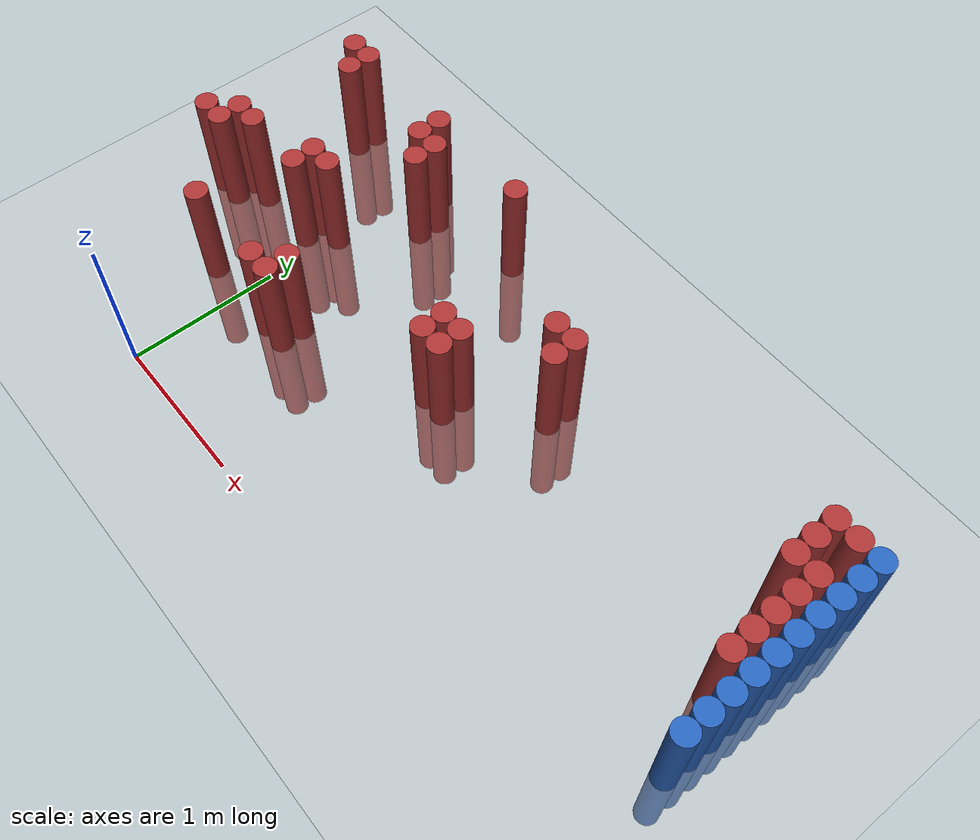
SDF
<sdf version="1.6">
 <world name="default">
  <model name="ground_plane">
   <static>1</static>
   <link name="link">
    <collision name="collision">
     <geometry><plane><normal>0 0 1</normal><size>100 100</size></plane></geometry>
     <surface><friction><ode><mu>100</mu><mu2>50</mu2></ode></friction></surface>
    </collision>
    <visual name="visual">
     <cast_shadows>0</cast_shadows>
     <geometry><plane><normal>0 0 1</normal><size>100 100</size></plane></geometry>
     <material>
      <script><uri>file://media/materials/scripts/gazebo.material</uri><name>Gazebo/Grey</name></script>
     </material>
    </visual>
   </link>
  </model>
  <model name="unit_cylinder_126">
   <static>1</static>
   <pose>3.925000 0.925000 0.000000 0.000000 0.000000 0.000000</pose>
   <link name="link">
    <inertial>
     <mass>1</mass>
     <inertia><ixx>0.145833</ixx><ixy>0</ixy><ixz>0</ixz><iyy>0.145833</iyy><iyz>0</iyz><izz>0.125</izz></inertia>
    </inertial>
    <collision name="collision">
     <geometry><cylinder><radius>0.075000</radius><length>1.5</length></cylinder></geometry>
    </collision>
    <visual name="visual">
     <geometry><cylinder><radius>0.075000</radius><length>1.5</length></cylinder></geometry>
     <material>
      <ambient>0.152000 0.379000 0.720000 1</ambient>
      <diffuse>0.152000 0.379000 0.720000 1</diffuse>
     </material>
     <material>
      <script><name>Gazebo/Grey</name><uri>file://media/materials/scripts/gazebo.material</uri></script>
     </material>
    </visual>
   </link>
  </model>
  <model name="unit_cylinder_128">
   <static>1</static>
   <pose>3.925000 1.075000 0.000000 0.000000 0.000000 0.000000</pose>
   <link name="link">
    <inertial>
     <mass>1</mass>
     <inertia><ixx>0.145833</ixx><ixy>0</ixy><ixz>0</ixz><iyy>0.145833</iyy><iyz>0</iyz><izz>0.125</izz></inertia>
    </inertial>
    <collision name="collision">
     <geometry><cylinder><radius>0.075000</radius><length>1.5</length></cylinder></geometry>
    </collision>
    <visual name="visual">
     <geometry><cylinder><radius>0.075000</radius><length>1.5</length></cylinder></geometry>
     <material>
      <ambient>0.152000 0.379000 0.720000 1</ambient>
      <diffuse>0.152000 0.379000 0.720000 1</diffuse>
     </material>
     <material>
      <script><name>Gazebo/Grey</name><uri>file://media/materials/scripts/gazebo.material</uri></script>
     </material>
    </visual>
   </link>
  </model>
  <model name="unit_cylinder_130">
   <static>1</static>
   <pose>3.925000 1.225000 0.000000 0.000000 0.000000 0.000000</pose>
   <link name="link">
    <inertial>
     <mass>1</mass>
     <inertia><ixx>0.145833</ixx><ixy>0</ixy><ixz>0</ixz><iyy>0.145833</iyy><iyz>0</iyz><izz>0.125</izz></inertia>
    </inertial>
    <collision name="collision">
     <geometry><cylinder><radius>0.075000</radius><length>1.5</length></cylinder></geometry>
    </collision>
    <visual name="visual">
     <geometry><cylinder><radius>0.075000</radius><length>1.5</length></cylinder></geometry>
     <material>
      <ambient>0.152000 0.379000 0.720000 1</ambient>
      <diffuse>0.152000 0.379000 0.720000 1</diffuse>
     </material>
     <material>
      <script><name>Gazebo/Grey</name><uri>file://media/materials/scripts/gazebo.material</uri></script>
     </material>
    </visual>
   </link>
  </model>
  <model name="unit_cylinder_132">
   <static>1</static>
   <pose>3.925000 1.375000 0.000000 0.000000 0.000000 0.000000</pose>
   <link name="link">
    <inertial>
     <mass>1</mass>
     <inertia><ixx>0.145833</ixx><ixy>0</ixy><ixz>0</ixz><iyy>0.145833</iyy><iyz>0</iyz><izz>0.125</izz></inertia>
    </inertial>
    <collision name="collision">
     <geometry><cylinder><radius>0.075000</radius><length>1.5</length></cylinder></geometry>
    </collision>
    <visual name="visual">
     <geometry><cylinder><radius>0.075000</radius><length>1.5</length></cylinder></geometry>
     <material>
      <ambient>0.152000 0.379000 0.720000 1</ambient>
      <diffuse>0.152000 0.379000 0.720000 1</diffuse>
     </material>
     <material>
      <script><name>Gazebo/Grey</name><uri>file://media/materials/scripts/gazebo.material</uri></script>
     </material>
    </visual>
   </link>
  </model>
  <model name="unit_cylinder_134">
   <static>1</static>
   <pose>3.925000 1.525000 0.000000 0.000000 0.000000 0.000000</pose>
   <link name="link">
    <inertial>
     <mass>1</mass>
     <inertia><ixx>0.145833</ixx><ixy>0</ixy><ixz>0</ixz><iyy>0.145833</iyy><iyz>0</iyz><izz>0.125</izz></inertia>
    </inertial>
    <collision name="collision">
     <geometry><cylinder><radius>0.075000</radius><length>1.5</length></cylinder></geometry>
    </collision>
    <visual name="visual">
     <geometry><cylinder><radius>0.075000</radius><length>1.5</length></cylinder></geometry>
     <material>
      <ambient>0.152000 0.379000 0.720000 1</ambient>
      <diffuse>0.152000 0.379000 0.720000 1</diffuse>
     </material>
     <material>
      <script><name>Gazebo/Grey</name><uri>file://media/materials/scripts/gazebo.material</uri></script>
     </material>
    </visual>
   </link>
  </model>
  <model name="unit_cylinder_136">
   <static>1</static>
   <pose>3.925000 1.675000 0.000000 0.000000 0.000000 0.000000</pose>
   <link name="link">
    <inertial>
     <mass>1</mass>
     <inertia><ixx>0.145833</ixx><ixy>0</ixy><ixz>0</ixz><iyy>0.145833</iyy><iyz>0</iyz><izz>0.125</izz></inertia>
    </inertial>
    <collision name="collision">
     <geometry><cylinder><radius>0.075000</radius><length>1.5</length></cylinder></geometry>
    </collision>
    <visual name="visual">
     <geometry><cylinder><radius>0.075000</radius><length>1.5</length></cylinder></geometry>
     <material>
      <ambient>0.152000 0.379000 0.720000 1</ambient>
      <diffuse>0.152000 0.379000 0.720000 1</diffuse>
     </material>
     <material>
      <script><name>Gazebo/Grey</name><uri>file://media/materials/scripts/gazebo.material</uri></script>
     </material>
    </visual>
   </link>
  </model>
  <model name="unit_cylinder_138">
   <static>1</static>
   <pose>3.925000 1.825000 0.000000 0.000000 0.000000 0.000000</pose>
   <link name="link">
    <inertial>
     <mass>1</mass>
     <inertia><ixx>0.145833</ixx><ixy>0</ixy><ixz>0</ixz><iyy>0.145833</iyy><iyz>0</iyz><izz>0.125</izz></inertia>
    </inertial>
    <collision name="collision">
     <geometry><cylinder><radius>0.075000</radius><length>1.5</length></cylinder></geometry>
    </collision>
    <visual name="visual">
     <geometry><cylinder><radius>0.075000</radius><length>1.5</length></cylinder></geometry>
     <material>
      <ambient>0.152000 0.379000 0.720000 1</ambient>
      <diffuse>0.152000 0.379000 0.720000 1</diffuse>
     </material>
     <material>
      <script><name>Gazebo/Grey</name><uri>file://media/materials/scripts/gazebo.material</uri></script>
     </material>
    </visual>
   </link>
  </model>
  <model name="unit_cylinder_140">
   <static>1</static>
   <pose>3.925000 1.975000 0.000000 0.000000 0.000000 0.000000</pose>
   <link name="link">
    <inertial>
     <mass>1</mass>
     <inertia><ixx>0.145833</ixx><ixy>0</ixy><ixz>0</ixz><iyy>0.145833</iyy><iyz>0</iyz><izz>0.125</izz></inertia>
    </inertial>
    <collision name="collision">
     <geometry><cylinder><radius>0.075000</radius><length>1.5</length></cylinder></geometry>
    </collision>
    <visual name="visual">
     <geometry><cylinder><radius>0.075000</radius><length>1.5</length></cylinder></geometry>
     <material>
      <ambient>0.152000 0.379000 0.720000 1</ambient>
      <diffuse>0.152000 0.379000 0.720000 1</diffuse>
     </material>
     <material>
      <script><name>Gazebo/Grey</name><uri>file://media/materials/scripts/gazebo.material</uri></script>
     </material>
    </visual>
   </link>
  </model>
  <model name="unit_cylinder_142">
   <static>1</static>
   <pose>3.925000 2.125000 0.000000 0.000000 0.000000 0.000000</pose>
   <link name="link">
    <inertial>
     <mass>1</mass>
     <inertia><ixx>0.145833</ixx><ixy>0</ixy><ixz>0</ixz><iyy>0.145833</iyy><iyz>0</iyz><izz>0.125</izz></inertia>
    </inertial>
    <collision name="collision">
     <geometry><cylinder><radius>0.075000</radius><length>1.5</length></cylinder></geometry>
    </collision>
    <visual name="visual">
     <geometry><cylinder><radius>0.075000</radius><length>1.5</length></cylinder></geometry>
     <material>
      <ambient>0.152000 0.379000 0.720000 1</ambient>
      <diffuse>0.152000 0.379000 0.720000 1</diffuse>
     </material>
     <material>
      <script><name>Gazebo/Grey</name><uri>file://media/materials/scripts/gazebo.material</uri></script>
     </material>
    </visual>
   </link>
  </model>
  <model name="unit_cylinder_324">
   <static>1</static>
   <pose>-0.875000 1.225000 0.000000 0.000000 0.000000 0.000000</pose>
   <link name="link">
    <inertial>
     <mass>1</mass>
     <inertia><ixx>0.145833</ixx><ixy>0</ixy><ixz>0</ixz><iyy>0.145833</iyy><iyz>0</iyz><izz>0.125</izz></inertia>
    </inertial>
    <collision name="collision">
     <geometry><cylinder><radius>0.075000</radius><length>1.5</length></cylinder></geometry>
    </collision>
    <visual name="visual">
     <geometry><cylinder><radius>0.075000</radius><length>1.5</length></cylinder></geometry>
     <material>
      <ambient>0.648000 0.192000 0.192000 1</ambient>
      <diffuse>0.648000 0.192000 0.192000 1</diffuse>
     </material>
     <material>
      <script><name>Gazebo/Grey</name><uri>file://media/materials/scripts/gazebo.material</uri></script>
     </material>
    </visual>
   </link>
  </model>
  <model name="unit_cylinder_325">
   <static>1</static>
   <pose>-0.725000 1.225000 0.000000 0.000000 0.000000 0.000000</pose>
   <link name="link">
    <inertial>
     <mass>1</mass>
     <inertia><ixx>0.145833</ixx><ixy>0</ixy><ixz>0</ixz><iyy>0.145833</iyy><iyz>0</iyz><izz>0.125</izz></inertia>
    </inertial>
    <collision name="collision">
     <geometry><cylinder><radius>0.075000</radius><length>1.5</length></cylinder></geometry>
    </collision>
    <visual name="visual">
     <geometry><cylinder><radius>0.075000</radius><length>1.5</length></cylinder></geometry>
     <material>
      <ambient>0.648000 0.192000 0.192000 1</ambient>
      <diffuse>0.648000 0.192000 0.192000 1</diffuse>
     </material>
     <material>
      <script><name>Gazebo/Grey</name><uri>file://media/materials/scripts/gazebo.material</uri></script>
     </material>
    </visual>
   </link>
  </model>
  <model name="unit_cylinder_326">
   <static>1</static>
   <pose>-0.725000 1.375000 0.000000 0.000000 0.000000 0.000000</pose>
   <link name="link">
    <inertial>
     <mass>1</mass>
     <inertia><ixx>0.145833</ixx><ixy>0</ixy><ixz>0</ixz><iyy>0.145833</iyy><iyz>0</iyz><izz>0.125</izz></inertia>
    </inertial>
    <collision name="collision">
     <geometry><cylinder><radius>0.075000</radius><length>1.5</length></cylinder></geometry>
    </collision>
    <visual name="visual">
     <geometry><cylinder><radius>0.075000</radius><length>1.5</length></cylinder></geometry>
     <material>
      <ambient>0.648000 0.192000 0.192000 1</ambient>
      <diffuse>0.648000 0.192000 0.192000 1</diffuse>
     </material>
     <material>
      <script><name>Gazebo/Grey</name><uri>file://media/materials/scripts/gazebo.material</uri></script>
     </material>
    </visual>
   </link>
  </model>
  <model name="unit_cylinder_327">
   <static>1</static>
   <pose>-0.725000 2.275000 0.000000 0.000000 0.000000 0.000000</pose>
   <link name="link">
    <inertial>
     <mass>1</mass>
     <inertia><ixx>0.145833</ixx><ixy>0</ixy><ixz>0</ixz><iyy>0.145833</iyy><iyz>0</iyz><izz>0.125</izz></inertia>
    </inertial>
    <collision name="collision">
     <geometry><cylinder><radius>0.075000</radius><length>1.5</length></cylinder></geometry>
    </collision>
    <visual name="visual">
     <geometry><cylinder><radius>0.075000</radius><length>1.5</length></cylinder></geometry>
     <material>
      <ambient>0.648000 0.192000 0.192000 1</ambient>
      <diffuse>0.648000 0.192000 0.192000 1</diffuse>
     </material>
     <material>
      <script><name>Gazebo/Grey</name><uri>file://media/materials/scripts/gazebo.material</uri></script>
     </material>
    </visual>
   </link>
  </model>
  <model name="unit_cylinder_333">
   <static>1</static>
   <pose>-0.575000 1.375000 0.000000 0.000000 0.000000 0.000000</pose>
   <link name="link">
    <inertial>
     <mass>1</mass>
     <inertia><ixx>0.145833</ixx><ixy>0</ixy><ixz>0</ixz><iyy>0.145833</iyy><iyz>0</iyz><izz>0.125</izz></inertia>
    </inertial>
    <collision name="collision">
     <geometry><cylinder><radius>0.075000</radius><length>1.5</length></cylinder></geometry>
    </collision>
    <visual name="visual">
     <geometry><cylinder><radius>0.075000</radius><length>1.5</length></cylinder></geometry>
     <material>
      <ambient>0.648000 0.192000 0.192000 1</ambient>
      <diffuse>0.648000 0.192000 0.192000 1</diffuse>
     </material>
     <material>
      <script><name>Gazebo/Grey</name><uri>file://media/materials/scripts/gazebo.material</uri></script>
     </material>
    </visual>
   </link>
  </model>
  <model name="unit_cylinder_334">
   <static>1</static>
   <pose>-0.575000 2.125000 0.000000 0.000000 0.000000 0.000000</pose>
   <link name="link">
    <inertial>
     <mass>1</mass>
     <inertia><ixx>0.145833</ixx><ixy>0</ixy><ixz>0</ixz><iyy>0.145833</iyy><iyz>0</iyz><izz>0.125</izz></inertia>
    </inertial>
    <collision name="collision">
     <geometry><cylinder><radius>0.075000</radius><length>1.5</length></cylinder></geometry>
    </collision>
    <visual name="visual">
     <geometry><cylinder><radius>0.075000</radius><length>1.5</length></cylinder></geometry>
     <material>
      <ambient>0.648000 0.192000 0.192000 1</ambient>
      <diffuse>0.648000 0.192000 0.192000 1</diffuse>
     </material>
     <material>
      <script><name>Gazebo/Grey</name><uri>file://media/materials/scripts/gazebo.material</uri></script>
     </material>
    </visual>
   </link>
  </model>
  <model name="unit_cylinder_335">
   <static>1</static>
   <pose>-0.575000 2.275000 0.000000 0.000000 0.000000 0.000000</pose>
   <link name="link">
    <inertial>
     <mass>1</mass>
     <inertia><ixx>0.145833</ixx><ixy>0</ixy><ixz>0</ixz><iyy>0.145833</iyy><iyz>0</iyz><izz>0.125</izz></inertia>
    </inertial>
    <collision name="collision">
     <geometry><cylinder><radius>0.075000</radius><length>1.5</length></cylinder></geometry>
    </collision>
    <visual name="visual">
     <geometry><cylinder><radius>0.075000</radius><length>1.5</length></cylinder></geometry>
     <material>
      <ambient>0.648000 0.192000 0.192000 1</ambient>
      <diffuse>0.648000 0.192000 0.192000 1</diffuse>
     </material>
     <material>
      <script><name>Gazebo/Grey</name><uri>file://media/materials/scripts/gazebo.material</uri></script>
     </material>
    </visual>
   </link>
  </model>
  <model name="unit_cylinder_346">
   <static>1</static>
   <pose>-0.275000 0.775000 0.000000 0.000000 0.000000 0.000000</pose>
   <link name="link">
    <inertial>
     <mass>1</mass>
     <inertia><ixx>0.145833</ixx><ixy>0</ixy><ixz>0</ixz><iyy>0.145833</iyy><iyz>0</iyz><izz>0.125</izz></inertia>
    </inertial>
    <collision name="collision">
     <geometry><cylinder><radius>0.075000</radius><length>1.5</length></cylinder></geometry>
    </collision>
    <visual name="visual">
     <geometry><cylinder><radius>0.075000</radius><length>1.5</length></cylinder></geometry>
     <material>
      <ambient>0.648000 0.192000 0.192000 1</ambient>
      <diffuse>0.648000 0.192000 0.192000 1</diffuse>
     </material>
     <material>
      <script><name>Gazebo/Grey</name><uri>file://media/materials/scripts/gazebo.material</uri></script>
     </material>
    </visual>
   </link>
  </model>
  <model name="unit_cylinder_349">
   <static>1</static>
   <pose>-0.125000 1.375000 0.000000 0.000000 0.000000 0.000000</pose>
   <link name="link">
    <inertial>
     <mass>1</mass>
     <inertia><ixx>0.145833</ixx><ixy>0</ixy><ixz>0</ixz><iyy>0.145833</iyy><iyz>0</iyz><izz>0.125</izz></inertia>
    </inertial>
    <collision name="collision">
     <geometry><cylinder><radius>0.075000</radius><length>1.5</length></cylinder></geometry>
    </collision>
    <visual name="visual">
     <geometry><cylinder><radius>0.075000</radius><length>1.5</length></cylinder></geometry>
     <material>
      <ambient>0.648000 0.192000 0.192000 1</ambient>
      <diffuse>0.648000 0.192000 0.192000 1</diffuse>
     </material>
     <material>
      <script><name>Gazebo/Grey</name><uri>file://media/materials/scripts/gazebo.material</uri></script>
     </material>
    </visual>
   </link>
  </model>
  <model name="unit_cylinder_350">
   <static>1</static>
   <pose>-0.125000 1.525000 0.000000 0.000000 0.000000 0.000000</pose>
   <link name="link">
    <inertial>
     <mass>1</mass>
     <inertia><ixx>0.145833</ixx><ixy>0</ixy><ixz>0</ixz><iyy>0.145833</iyy><iyz>0</iyz><izz>0.125</izz></inertia>
    </inertial>
    <collision name="collision">
     <geometry><cylinder><radius>0.075000</radius><length>1.5</length></cylinder></geometry>
    </collision>
    <visual name="visual">
     <geometry><cylinder><radius>0.075000</radius><length>1.5</length></cylinder></geometry>
     <material>
      <ambient>0.648000 0.192000 0.192000 1</ambient>
      <diffuse>0.648000 0.192000 0.192000 1</diffuse>
     </material>
     <material>
      <script><name>Gazebo/Grey</name><uri>file://media/materials/scripts/gazebo.material</uri></script>
     </material>
    </visual>
   </link>
  </model>
  <model name="unit_cylinder_357">
   <static>1</static>
   <pose>0.025000 1.525000 0.000000 0.000000 0.000000 0.000000</pose>
   <link name="link">
    <inertial>
     <mass>1</mass>
     <inertia><ixx>0.145833</ixx><ixy>0</ixy><ixz>0</ixz><iyy>0.145833</iyy><iyz>0</iyz><izz>0.125</izz></inertia>
    </inertial>
    <collision name="collision">
     <geometry><cylinder><radius>0.075000</radius><length>1.5</length></cylinder></geometry>
    </collision>
    <visual name="visual">
     <geometry><cylinder><radius>0.075000</radius><length>1.5</length></cylinder></geometry>
     <material>
      <ambient>0.648000 0.192000 0.192000 1</ambient>
      <diffuse>0.648000 0.192000 0.192000 1</diffuse>
     </material>
     <material>
      <script><name>Gazebo/Grey</name><uri>file://media/materials/scripts/gazebo.material</uri></script>
     </material>
    </visual>
   </link>
  </model>
  <model name="unit_cylinder_362">
   <static>1</static>
   <pose>0.175000 2.125000 0.000000 0.000000 0.000000 0.000000</pose>
   <link name="link">
    <inertial>
     <mass>1</mass>
     <inertia><ixx>0.145833</ixx><ixy>0</ixy><ixz>0</ixz><iyy>0.145833</iyy><iyz>0</iyz><izz>0.125</izz></inertia>
    </inertial>
    <collision name="collision">
     <geometry><cylinder><radius>0.075000</radius><length>1.5</length></cylinder></geometry>
    </collision>
    <visual name="visual">
     <geometry><cylinder><radius>0.075000</radius><length>1.5</length></cylinder></geometry>
     <material>
      <ambient>0.648000 0.192000 0.192000 1</ambient>
      <diffuse>0.648000 0.192000 0.192000 1</diffuse>
     </material>
     <material>
      <script><name>Gazebo/Grey</name><uri>file://media/materials/scripts/gazebo.material</uri></script>
     </material>
    </visual>
   </link>
  </model>
  <model name="unit_cylinder_363">
   <static>1</static>
   <pose>0.175000 2.275000 0.000000 0.000000 0.000000 0.000000</pose>
   <link name="link">
    <inertial>
     <mass>1</mass>
     <inertia><ixx>0.145833</ixx><ixy>0</ixy><ixz>0</ixz><iyy>0.145833</iyy><iyz>0</iyz><izz>0.125</izz></inertia>
    </inertial>
    <collision name="collision">
     <geometry><cylinder><radius>0.075000</radius><length>1.5</length></cylinder></geometry>
    </collision>
    <visual name="visual">
     <geometry><cylinder><radius>0.075000</radius><length>1.5</length></cylinder></geometry>
     <material>
      <ambient>0.648000 0.192000 0.192000 1</ambient>
      <diffuse>0.648000 0.192000 0.192000 1</diffuse>
     </material>
     <material>
      <script><name>Gazebo/Grey</name><uri>file://media/materials/scripts/gazebo.material</uri></script>
     </material>
    </visual>
   </link>
  </model>
  <model name="unit_cylinder_364">
   <static>1</static>
   <pose>0.325000 0.775000 0.000000 0.000000 0.000000 0.000000</pose>
   <link name="link">
    <inertial>
     <mass>1</mass>
     <inertia><ixx>0.145833</ixx><ixy>0</ixy><ixz>0</ixz><iyy>0.145833</iyy><iyz>0</iyz><izz>0.125</izz></inertia>
    </inertial>
    <collision name="collision">
     <geometry><cylinder><radius>0.075000</radius><length>1.5</length></cylinder></geometry>
    </collision>
    <visual name="visual">
     <geometry><cylinder><radius>0.075000</radius><length>1.5</length></cylinder></geometry>
     <material>
      <ambient>0.648000 0.192000 0.192000 1</ambient>
      <diffuse>0.648000 0.192000 0.192000 1</diffuse>
     </material>
     <material>
      <script><name>Gazebo/Grey</name><uri>file://media/materials/scripts/gazebo.material</uri></script>
     </material>
    </visual>
   </link>
  </model>
  <model name="unit_cylinder_365">
   <static>1</static>
   <pose>0.325000 1.975000 0.000000 0.000000 0.000000 0.000000</pose>
   <link name="link">
    <inertial>
     <mass>1</mass>
     <inertia><ixx>0.145833</ixx><ixy>0</ixy><ixz>0</ixz><iyy>0.145833</iyy><iyz>0</iyz><izz>0.125</izz></inertia>
    </inertial>
    <collision name="collision">
     <geometry><cylinder><radius>0.075000</radius><length>1.5</length></cylinder></geometry>
    </collision>
    <visual name="visual">
     <geometry><cylinder><radius>0.075000</radius><length>1.5</length></cylinder></geometry>
     <material>
      <ambient>0.648000 0.192000 0.192000 1</ambient>
      <diffuse>0.648000 0.192000 0.192000 1</diffuse>
     </material>
     <material>
      <script><name>Gazebo/Grey</name><uri>file://media/materials/scripts/gazebo.material</uri></script>
     </material>
    </visual>
   </link>
  </model>
  <model name="unit_cylinder_366">
   <static>1</static>
   <pose>0.325000 2.125000 0.000000 0.000000 0.000000 0.000000</pose>
   <link name="link">
    <inertial>
     <mass>1</mass>
     <inertia><ixx>0.145833</ixx><ixy>0</ixy><ixz>0</ixz><iyy>0.145833</iyy><iyz>0</iyz><izz>0.125</izz></inertia>
    </inertial>
    <collision name="collision">
     <geometry><cylinder><radius>0.075000</radius><length>1.5</length></cylinder></geometry>
    </collision>
    <visual name="visual">
     <geometry><cylinder><radius>0.075000</radius><length>1.5</length></cylinder></geometry>
     <material>
      <ambient>0.648000 0.192000 0.192000 1</ambient>
      <diffuse>0.648000 0.192000 0.192000 1</diffuse>
     </material>
     <material>
      <script><name>Gazebo/Grey</name><uri>file://media/materials/scripts/gazebo.material</uri></script>
     </material>
    </visual>
   </link>
  </model>
  <model name="unit_cylinder_369">
   <static>1</static>
   <pose>0.475000 0.775000 0.000000 0.000000 0.000000 0.000000</pose>
   <link name="link">
    <inertial>
     <mass>1</mass>
     <inertia><ixx>0.145833</ixx><ixy>0</ixy><ixz>0</ixz><iyy>0.145833</iyy><iyz>0</iyz><izz>0.125</izz></inertia>
    </inertial>
    <collision name="collision">
     <geometry><cylinder><radius>0.075000</radius><length>1.5</length></cylinder></geometry>
    </collision>
    <visual name="visual">
     <geometry><cylinder><radius>0.075000</radius><length>1.5</length></cylinder></geometry>
     <material>
      <ambient>0.648000 0.192000 0.192000 1</ambient>
      <diffuse>0.648000 0.192000 0.192000 1</diffuse>
     </material>
     <material>
      <script><name>Gazebo/Grey</name><uri>file://media/materials/scripts/gazebo.material</uri></script>
     </material>
    </visual>
   </link>
  </model>
  <model name="unit_cylinder_370">
   <static>1</static>
   <pose>0.475000 0.925000 0.000000 0.000000 0.000000 0.000000</pose>
   <link name="link">
    <inertial>
     <mass>1</mass>
     <inertia><ixx>0.145833</ixx><ixy>0</ixy><ixz>0</ixz><iyy>0.145833</iyy><iyz>0</iyz><izz>0.125</izz></inertia>
    </inertial>
    <collision name="collision">
     <geometry><cylinder><radius>0.075000</radius><length>1.5</length></cylinder></geometry>
    </collision>
    <visual name="visual">
     <geometry><cylinder><radius>0.075000</radius><length>1.5</length></cylinder></geometry>
     <material>
      <ambient>0.648000 0.192000 0.192000 1</ambient>
      <diffuse>0.648000 0.192000 0.192000 1</diffuse>
     </material>
     <material>
      <script><name>Gazebo/Grey</name><uri>file://media/materials/scripts/gazebo.material</uri></script>
     </material>
    </visual>
   </link>
  </model>
  <model name="unit_cylinder_387">
   <static>1</static>
   <pose>0.925000 2.275000 0.000000 0.000000 0.000000 0.000000</pose>
   <link name="link">
    <inertial>
     <mass>1</mass>
     <inertia><ixx>0.145833</ixx><ixy>0</ixy><ixz>0</ixz><iyy>0.145833</iyy><iyz>0</iyz><izz>0.125</izz></inertia>
    </inertial>
    <collision name="collision">
     <geometry><cylinder><radius>0.075000</radius><length>1.5</length></cylinder></geometry>
    </collision>
    <visual name="visual">
     <geometry><cylinder><radius>0.075000</radius><length>1.5</length></cylinder></geometry>
     <material>
      <ambient>0.648000 0.192000 0.192000 1</ambient>
      <diffuse>0.648000 0.192000 0.192000 1</diffuse>
     </material>
     <material>
      <script><name>Gazebo/Grey</name><uri>file://media/materials/scripts/gazebo.material</uri></script>
     </material>
    </visual>
   </link>
  </model>
  <model name="unit_cylinder_402">
   <static>1</static>
   <pose>1.375000 1.225000 0.000000 0.000000 0.000000 0.000000</pose>
   <link name="link">
    <inertial>
     <mass>1</mass>
     <inertia><ixx>0.145833</ixx><ixy>0</ixy><ixz>0</ixz><iyy>0.145833</iyy><iyz>0</iyz><izz>0.125</izz></inertia>
    </inertial>
    <collision name="collision">
     <geometry><cylinder><radius>0.075000</radius><length>1.5</length></cylinder></geometry>
    </collision>
    <visual name="visual">
     <geometry><cylinder><radius>0.075000</radius><length>1.5</length></cylinder></geometry>
     <material>
      <ambient>0.648000 0.192000 0.192000 1</ambient>
      <diffuse>0.648000 0.192000 0.192000 1</diffuse>
     </material>
     <material>
      <script><name>Gazebo/Grey</name><uri>file://media/materials/scripts/gazebo.material</uri></script>
     </material>
    </visual>
   </link>
  </model>
  <model name="unit_cylinder_403">
   <static>1</static>
   <pose>1.375000 1.375000 0.000000 0.000000 0.000000 0.000000</pose>
   <link name="link">
    <inertial>
     <mass>1</mass>
     <inertia><ixx>0.145833</ixx><ixy>0</ixy><ixz>0</ixz><iyy>0.145833</iyy><iyz>0</iyz><izz>0.125</izz></inertia>
    </inertial>
    <collision name="collision">
     <geometry><cylinder><radius>0.075000</radius><length>1.5</length></cylinder></geometry>
    </collision>
    <visual name="visual">
     <geometry><cylinder><radius>0.075000</radius><length>1.5</length></cylinder></geometry>
     <material>
      <ambient>0.648000 0.192000 0.192000 1</ambient>
      <diffuse>0.648000 0.192000 0.192000 1</diffuse>
     </material>
     <material>
      <script><name>Gazebo/Grey</name><uri>file://media/materials/scripts/gazebo.material</uri></script>
     </material>
    </visual>
   </link>
  </model>
  <model name="unit_cylinder_406">
   <static>1</static>
   <pose>1.525000 1.225000 0.000000 0.000000 0.000000 0.000000</pose>
   <link name="link">
    <inertial>
     <mass>1</mass>
     <inertia><ixx>0.145833</ixx><ixy>0</ixy><ixz>0</ixz><iyy>0.145833</iyy><iyz>0</iyz><izz>0.125</izz></inertia>
    </inertial>
    <collision name="collision">
     <geometry><cylinder><radius>0.075000</radius><length>1.5</length></cylinder></geometry>
    </collision>
    <visual name="visual">
     <geometry><cylinder><radius>0.075000</radius><length>1.5</length></cylinder></geometry>
     <material>
      <ambient>0.648000 0.192000 0.192000 1</ambient>
      <diffuse>0.648000 0.192000 0.192000 1</diffuse>
     </material>
     <material>
      <script><name>Gazebo/Grey</name><uri>file://media/materials/scripts/gazebo.material</uri></script>
     </material>
    </visual>
   </link>
  </model>
  <model name="unit_cylinder_407">
   <static>1</static>
   <pose>1.525000 1.375000 0.000000 0.000000 0.000000 0.000000</pose>
   <link name="link">
    <inertial>
     <mass>1</mass>
     <inertia><ixx>0.145833</ixx><ixy>0</ixy><ixz>0</ixz><iyy>0.145833</iyy><iyz>0</iyz><izz>0.125</izz></inertia>
    </inertial>
    <collision name="collision">
     <geometry><cylinder><radius>0.075000</radius><length>1.5</length></cylinder></geometry>
    </collision>
    <visual name="visual">
     <geometry><cylinder><radius>0.075000</radius><length>1.5</length></cylinder></geometry>
     <material>
      <ambient>0.648000 0.192000 0.192000 1</ambient>
      <diffuse>0.648000 0.192000 0.192000 1</diffuse>
     </material>
     <material>
      <script><name>Gazebo/Grey</name><uri>file://media/materials/scripts/gazebo.material</uri></script>
     </material>
    </visual>
   </link>
  </model>
  <model name="unit_cylinder_411">
   <static>1</static>
   <pose>1.825000 1.825000 0.000000 0.000000 0.000000 0.000000</pose>
   <link name="link">
    <inertial>
     <mass>1</mass>
     <inertia><ixx>0.145833</ixx><ixy>0</ixy><ixz>0</ixz><iyy>0.145833</iyy><iyz>0</iyz><izz>0.125</izz></inertia>
    </inertial>
    <collision name="collision">
     <geometry><cylinder><radius>0.075000</radius><length>1.5</length></cylinder></geometry>
    </collision>
    <visual name="visual">
     <geometry><cylinder><radius>0.075000</radius><length>1.5</length></cylinder></geometry>
     <material>
      <ambient>0.648000 0.192000 0.192000 1</ambient>
      <diffuse>0.648000 0.192000 0.192000 1</diffuse>
     </material>
     <material>
      <script><name>Gazebo/Grey</name><uri>file://media/materials/scripts/gazebo.material</uri></script>
     </material>
    </visual>
   </link>
  </model>
  <model name="unit_cylinder_415">
   <static>1</static>
   <pose>1.975000 1.675000 0.000000 0.000000 0.000000 0.000000</pose>
   <link name="link">
    <inertial>
     <mass>1</mass>
     <inertia><ixx>0.145833</ixx><ixy>0</ixy><ixz>0</ixz><iyy>0.145833</iyy><iyz>0</iyz><izz>0.125</izz></inertia>
    </inertial>
    <collision name="collision">
     <geometry><cylinder><radius>0.075000</radius><length>1.5</length></cylinder></geometry>
    </collision>
    <visual name="visual">
     <geometry><cylinder><radius>0.075000</radius><length>1.5</length></cylinder></geometry>
     <material>
      <ambient>0.648000 0.192000 0.192000 1</ambient>
      <diffuse>0.648000 0.192000 0.192000 1</diffuse>
     </material>
     <material>
      <script><name>Gazebo/Grey</name><uri>file://media/materials/scripts/gazebo.material</uri></script>
     </material>
    </visual>
   </link>
  </model>
  <model name="unit_cylinder_416">
   <static>1</static>
   <pose>1.975000 1.825000 0.000000 0.000000 0.000000 0.000000</pose>
   <link name="link">
    <inertial>
     <mass>1</mass>
     <inertia><ixx>0.145833</ixx><ixy>0</ixy><ixz>0</ixz><iyy>0.145833</iyy><iyz>0</iyz><izz>0.125</izz></inertia>
    </inertial>
    <collision name="collision">
     <geometry><cylinder><radius>0.075000</radius><length>1.5</length></cylinder></geometry>
    </collision>
    <visual name="visual">
     <geometry><cylinder><radius>0.075000</radius><length>1.5</length></cylinder></geometry>
     <material>
      <ambient>0.648000 0.192000 0.192000 1</ambient>
      <diffuse>0.648000 0.192000 0.192000 1</diffuse>
     </material>
     <material>
      <script><name>Gazebo/Grey</name><uri>file://media/materials/scripts/gazebo.material</uri></script>
     </material>
    </visual>
   </link>
  </model>
  <model name="unit_cylinder_458">
   <static>1</static>
   <pose>3.625000 1.825000 0.000000 0.000000 0.000000 0.000000</pose>
   <link name="link">
    <inertial>
     <mass>1</mass>
     <inertia><ixx>0.145833</ixx><ixy>0</ixy><ixz>0</ixz><iyy>0.145833</iyy><iyz>0</iyz><izz>0.125</izz></inertia>
    </inertial>
    <collision name="collision">
     <geometry><cylinder><radius>0.075000</radius><length>1.5</length></cylinder></geometry>
    </collision>
    <visual name="visual">
     <geometry><cylinder><radius>0.075000</radius><length>1.5</length></cylinder></geometry>
     <material>
      <ambient>0.648000 0.192000 0.192000 1</ambient>
      <diffuse>0.648000 0.192000 0.192000 1</diffuse>
     </material>
     <material>
      <script><name>Gazebo/Grey</name><uri>file://media/materials/scripts/gazebo.material</uri></script>
     </material>
    </visual>
   </link>
  </model>
  <model name="unit_cylinder_459">
   <static>1</static>
   <pose>3.625000 1.975000 0.000000 0.000000 0.000000 0.000000</pose>
   <link name="link">
    <inertial>
     <mass>1</mass>
     <inertia><ixx>0.145833</ixx><ixy>0</ixy><ixz>0</ixz><iyy>0.145833</iyy><iyz>0</iyz><izz>0.125</izz></inertia>
    </inertial>
    <collision name="collision">
     <geometry><cylinder><radius>0.075000</radius><length>1.5</length></cylinder></geometry>
    </collision>
    <visual name="visual">
     <geometry><cylinder><radius>0.075000</radius><length>1.5</length></cylinder></geometry>
     <material>
      <ambient>0.648000 0.192000 0.192000 1</ambient>
      <diffuse>0.648000 0.192000 0.192000 1</diffuse>
     </material>
     <material>
      <script><name>Gazebo/Grey</name><uri>file://media/materials/scripts/gazebo.material</uri></script>
     </material>
    </visual>
   </link>
  </model>
  <model name="unit_cylinder_460">
   <static>1</static>
   <pose>3.625000 2.125000 0.000000 0.000000 0.000000 0.000000</pose>
   <link name="link">
    <inertial>
     <mass>1</mass>
     <inertia><ixx>0.145833</ixx><ixy>0</ixy><ixz>0</ixz><iyy>0.145833</iyy><iyz>0</iyz><izz>0.125</izz></inertia>
    </inertial>
    <collision name="collision">
     <geometry><cylinder><radius>0.075000</radius><length>1.5</length></cylinder></geometry>
    </collision>
    <visual name="visual">
     <geometry><cylinder><radius>0.075000</radius><length>1.5</length></cylinder></geometry>
     <material>
      <ambient>0.648000 0.192000 0.192000 1</ambient>
      <diffuse>0.648000 0.192000 0.192000 1</diffuse>
     </material>
     <material>
      <script><name>Gazebo/Grey</name><uri>file://media/materials/scripts/gazebo.material</uri></script>
     </material>
    </visual>
   </link>
  </model>
  <model name="unit_cylinder_473">
   <static>1</static>
   <pose>3.775000 1.225000 0.000000 0.000000 0.000000 0.000000</pose>
   <link name="link">
    <inertial>
     <mass>1</mass>
     <inertia><ixx>0.145833</ixx><ixy>0</ixy><ixz>0</ixz><iyy>0.145833</iyy><iyz>0</iyz><izz>0.125</izz></inertia>
    </inertial>
    <collision name="collision">
     <geometry><cylinder><radius>0.075000</radius><length>1.5</length></cylinder></geometry>
    </collision>
    <visual name="visual">
     <geometry><cylinder><radius>0.075000</radius><length>1.5</length></cylinder></geometry>
     <material>
      <ambient>0.648000 0.192000 0.192000 1</ambient>
      <diffuse>0.648000 0.192000 0.192000 1</diffuse>
     </material>
     <material>
      <script><name>Gazebo/Grey</name><uri>file://media/materials/scripts/gazebo.material</uri></script>
     </material>
    </visual>
   </link>
  </model>
  <model name="unit_cylinder_474">
   <static>1</static>
   <pose>3.775000 1.375000 0.000000 0.000000 0.000000 0.000000</pose>
   <link name="link">
    <inertial>
     <mass>1</mass>
     <inertia><ixx>0.145833</ixx><ixy>0</ixy><ixz>0</ixz><iyy>0.145833</iyy><iyz>0</iyz><izz>0.125</izz></inertia>
    </inertial>
    <collision name="collision">
     <geometry><cylinder><radius>0.075000</radius><length>1.5</length></cylinder></geometry>
    </collision>
    <visual name="visual">
     <geometry><cylinder><radius>0.075000</radius><length>1.5</length></cylinder></geometry>
     <material>
      <ambient>0.648000 0.192000 0.192000 1</ambient>
      <diffuse>0.648000 0.192000 0.192000 1</diffuse>
     </material>
     <material>
      <script><name>Gazebo/Grey</name><uri>file://media/materials/scripts/gazebo.material</uri></script>
     </material>
    </visual>
   </link>
  </model>
  <model name="unit_cylinder_475">
   <static>1</static>
   <pose>3.775000 1.525000 0.000000 0.000000 0.000000 0.000000</pose>
   <link name="link">
    <inertial>
     <mass>1</mass>
     <inertia><ixx>0.145833</ixx><ixy>0</ixy><ixz>0</ixz><iyy>0.145833</iyy><iyz>0</iyz><izz>0.125</izz></inertia>
    </inertial>
    <collision name="collision">
     <geometry><cylinder><radius>0.075000</radius><length>1.5</length></cylinder></geometry>
    </collision>
    <visual name="visual">
     <geometry><cylinder><radius>0.075000</radius><length>1.5</length></cylinder></geometry>
     <material>
      <ambient>0.648000 0.192000 0.192000 1</ambient>
      <diffuse>0.648000 0.192000 0.192000 1</diffuse>
     </material>
     <material>
      <script><name>Gazebo/Grey</name><uri>file://media/materials/scripts/gazebo.material</uri></script>
     </material>
    </visual>
   </link>
  </model>
  <model name="unit_cylinder_476">
   <static>1</static>
   <pose>3.775000 1.675000 0.000000 0.000000 0.000000 0.000000</pose>
   <link name="link">
    <inertial>
     <mass>1</mass>
     <inertia><ixx>0.145833</ixx><ixy>0</ixy><ixz>0</ixz><iyy>0.145833</iyy><iyz>0</iyz><izz>0.125</izz></inertia>
    </inertial>
    <collision name="collision">
     <geometry><cylinder><radius>0.075000</radius><length>1.5</length></cylinder></geometry>
    </collision>
    <visual name="visual">
     <geometry><cylinder><radius>0.075000</radius><length>1.5</length></cylinder></geometry>
     <material>
      <ambient>0.648000 0.192000 0.192000 1</ambient>
      <diffuse>0.648000 0.192000 0.192000 1</diffuse>
     </material>
     <material>
      <script><name>Gazebo/Grey</name><uri>file://media/materials/scripts/gazebo.material</uri></script>
     </material>
    </visual>
   </link>
  </model>
  <model name="unit_cylinder_477">
   <static>1</static>
   <pose>3.775000 1.825000 0.000000 0.000000 0.000000 0.000000</pose>
   <link name="link">
    <inertial>
     <mass>1</mass>
     <inertia><ixx>0.145833</ixx><ixy>0</ixy><ixz>0</ixz><iyy>0.145833</iyy><iyz>0</iyz><izz>0.125</izz></inertia>
    </inertial>
    <collision name="collision">
     <geometry><cylinder><radius>0.075000</radius><length>1.5</length></cylinder></geometry>
    </collision>
    <visual name="visual">
     <geometry><cylinder><radius>0.075000</radius><length>1.5</length></cylinder></geometry>
     <material>
      <ambient>0.648000 0.192000 0.192000 1</ambient>
      <diffuse>0.648000 0.192000 0.192000 1</diffuse>
     </material>
     <material>
      <script><name>Gazebo/Grey</name><uri>file://media/materials/scripts/gazebo.material</uri></script>
     </material>
    </visual>
   </link>
  </model>
  <model name="unit_cylinder_478">
   <static>1</static>
   <pose>3.775000 2.125000 0.000000 0.000000 0.000000 0.000000</pose>
   <link name="link">
    <inertial>
     <mass>1</mass>
     <inertia><ixx>0.145833</ixx><ixy>0</ixy><ixz>0</ixz><iyy>0.145833</iyy><iyz>0</iyz><izz>0.125</izz></inertia>
    </inertial>
    <collision name="collision">
     <geometry><cylinder><radius>0.075000</radius><length>1.5</length></cylinder></geometry>
    </collision>
    <visual name="visual">
     <geometry><cylinder><radius>0.075000</radius><length>1.5</length></cylinder></geometry>
     <material>
      <ambient>0.648000 0.192000 0.192000 1</ambient>
      <diffuse>0.648000 0.192000 0.192000 1</diffuse>
     </material>
     <material>
      <script><name>Gazebo/Grey</name><uri>file://media/materials/scripts/gazebo.material</uri></script>
     </material>
    </visual>
   </link>
  </model>
  <model name="unit_cylinder_504">
   <static>1</static>
   <pose>3.925000 0.775000 0.000000 0.000000 0.000000 0.000000</pose>
   <link name="link">
    <inertial>
     <mass>1</mass>
     <inertia><ixx>0.145833</ixx><ixy>0</ixy><ixz>0</ixz><iyy>0.145833</iyy><iyz>0</iyz><izz>0.125</izz></inertia>
    </inertial>
    <collision name="collision">
     <geometry><cylinder><radius>0.075000</radius><length>1.5</length></cylinder></geometry>
    </collision>
    <visual name="visual">
     <geometry><cylinder><radius>0.075000</radius><length>1.5</length></cylinder></geometry>
     <material>
      <ambient>0.152000 0.379000 0.720000 1</ambient>
      <diffuse>0.152000 0.379000 0.720000 1</diffuse>
     </material>
     <material>
      <script><name>Gazebo/Grey</name><uri>file://media/materials/scripts/gazebo.material</uri></script>
     </material>
    </visual>
   </link>
  </model>
  <model name="unit_cylinder_505">
   <static>1</static>
   <pose>3.925000 0.925000 0.000000 0.000000 0.000000 0.000000</pose>
   <link name="link">
    <inertial>
     <mass>1</mass>
     <inertia><ixx>0.145833</ixx><ixy>0</ixy><ixz>0</ixz><iyy>0.145833</iyy><iyz>0</iyz><izz>0.125</izz></inertia>
    </inertial>
    <collision name="collision">
     <geometry><cylinder><radius>0.075000</radius><length>1.5</length></cylinder></geometry>
    </collision>
    <visual name="visual">
     <geometry><cylinder><radius>0.075000</radius><length>1.5</length></cylinder></geometry>
     <material>
      <ambient>0.152000 0.379000 0.720000 1</ambient>
      <diffuse>0.152000 0.379000 0.720000 1</diffuse>
     </material>
     <material>
      <script><name>Gazebo/Grey</name><uri>file://media/materials/scripts/gazebo.material</uri></script>
     </material>
    </visual>
   </link>
  </model>
  <model name="unit_cylinder_506">
   <static>1</static>
   <pose>3.925000 1.075000 0.000000 0.000000 0.000000 0.000000</pose>
   <link name="link">
    <inertial>
     <mass>1</mass>
     <inertia><ixx>0.145833</ixx><ixy>0</ixy><ixz>0</ixz><iyy>0.145833</iyy><iyz>0</iyz><izz>0.125</izz></inertia>
    </inertial>
    <collision name="collision">
     <geometry><cylinder><radius>0.075000</radius><length>1.5</length></cylinder></geometry>
    </collision>
    <visual name="visual">
     <geometry><cylinder><radius>0.075000</radius><length>1.5</length></cylinder></geometry>
     <material>
      <ambient>0.152000 0.379000 0.720000 1</ambient>
      <diffuse>0.152000 0.379000 0.720000 1</diffuse>
     </material>
     <material>
      <script><name>Gazebo/Grey</name><uri>file://media/materials/scripts/gazebo.material</uri></script>
     </material>
    </visual>
   </link>
  </model>
  <model name="unit_cylinder_507">
   <static>1</static>
   <pose>3.925000 1.225000 0.000000 0.000000 0.000000 0.000000</pose>
   <link name="link">
    <inertial>
     <mass>1</mass>
     <inertia><ixx>0.145833</ixx><ixy>0</ixy><ixz>0</ixz><iyy>0.145833</iyy><iyz>0</iyz><izz>0.125</izz></inertia>
    </inertial>
    <collision name="collision">
     <geometry><cylinder><radius>0.075000</radius><length>1.5</length></cylinder></geometry>
    </collision>
    <visual name="visual">
     <geometry><cylinder><radius>0.075000</radius><length>1.5</length></cylinder></geometry>
     <material>
      <ambient>0.152000 0.379000 0.720000 1</ambient>
      <diffuse>0.152000 0.379000 0.720000 1</diffuse>
     </material>
     <material>
      <script><name>Gazebo/Grey</name><uri>file://media/materials/scripts/gazebo.material</uri></script>
     </material>
    </visual>
   </link>
  </model>
  <model name="unit_cylinder_508">
   <static>1</static>
   <pose>3.925000 1.375000 0.000000 0.000000 0.000000 0.000000</pose>
   <link name="link">
    <inertial>
     <mass>1</mass>
     <inertia><ixx>0.145833</ixx><ixy>0</ixy><ixz>0</ixz><iyy>0.145833</iyy><iyz>0</iyz><izz>0.125</izz></inertia>
    </inertial>
    <collision name="collision">
     <geometry><cylinder><radius>0.075000</radius><length>1.5</length></cylinder></geometry>
    </collision>
    <visual name="visual">
     <geometry><cylinder><radius>0.075000</radius><length>1.5</length></cylinder></geometry>
     <material>
      <ambient>0.152000 0.379000 0.720000 1</ambient>
      <diffuse>0.152000 0.379000 0.720000 1</diffuse>
     </material>
     <material>
      <script><name>Gazebo/Grey</name><uri>file://media/materials/scripts/gazebo.material</uri></script>
     </material>
    </visual>
   </link>
  </model>
  <model name="unit_cylinder_509">
   <static>1</static>
   <pose>3.925000 1.525000 0.000000 0.000000 0.000000 0.000000</pose>
   <link name="link">
    <inertial>
     <mass>1</mass>
     <inertia><ixx>0.145833</ixx><ixy>0</ixy><ixz>0</ixz><iyy>0.145833</iyy><iyz>0</iyz><izz>0.125</izz></inertia>
    </inertial>
    <collision name="collision">
     <geometry><cylinder><radius>0.075000</radius><length>1.5</length></cylinder></geometry>
    </collision>
    <visual name="visual">
     <geometry><cylinder><radius>0.075000</radius><length>1.5</length></cylinder></geometry>
     <material>
      <ambient>0.152000 0.379000 0.720000 1</ambient>
      <diffuse>0.152000 0.379000 0.720000 1</diffuse>
     </material>
     <material>
      <script><name>Gazebo/Grey</name><uri>file://media/materials/scripts/gazebo.material</uri></script>
     </material>
    </visual>
   </link>
  </model>
  <model name="unit_cylinder_510">
   <static>1</static>
   <pose>3.925000 1.675000 0.000000 0.000000 0.000000 0.000000</pose>
   <link name="link">
    <inertial>
     <mass>1</mass>
     <inertia><ixx>0.145833</ixx><ixy>0</ixy><ixz>0</ixz><iyy>0.145833</iyy><iyz>0</iyz><izz>0.125</izz></inertia>
    </inertial>
    <collision name="collision">
     <geometry><cylinder><radius>0.075000</radius><length>1.5</length></cylinder></geometry>
    </collision>
    <visual name="visual">
     <geometry><cylinder><radius>0.075000</radius><length>1.5</length></cylinder></geometry>
     <material>
      <ambient>0.152000 0.379000 0.720000 1</ambient>
      <diffuse>0.152000 0.379000 0.720000 1</diffuse>
     </material>
     <material>
      <script><name>Gazebo/Grey</name><uri>file://media/materials/scripts/gazebo.material</uri></script>
     </material>
    </visual>
   </link>
  </model>
  <model name="unit_cylinder_511">
   <static>1</static>
   <pose>3.925000 1.825000 0.000000 0.000000 0.000000 0.000000</pose>
   <link name="link">
    <inertial>
     <mass>1</mass>
     <inertia><ixx>0.145833</ixx><ixy>0</ixy><ixz>0</ixz><iyy>0.145833</iyy><iyz>0</iyz><izz>0.125</izz></inertia>
    </inertial>
    <collision name="collision">
     <geometry><cylinder><radius>0.075000</radius><length>1.5</length></cylinder></geometry>
    </collision>
    <visual name="visual">
     <geometry><cylinder><radius>0.075000</radius><length>1.5</length></cylinder></geometry>
     <material>
      <ambient>0.152000 0.379000 0.720000 1</ambient>
      <diffuse>0.152000 0.379000 0.720000 1</diffuse>
     </material>
     <material>
      <script><name>Gazebo/Grey</name><uri>file://media/materials/scripts/gazebo.material</uri></script>
     </material>
    </visual>
   </link>
  </model>
  <model name="unit_cylinder_512">
   <static>1</static>
   <pose>3.925000 1.975000 0.000000 0.000000 0.000000 0.000000</pose>
   <link name="link">
    <inertial>
     <mass>1</mass>
     <inertia><ixx>0.145833</ixx><ixy>0</ixy><ixz>0</ixz><iyy>0.145833</iyy><iyz>0</iyz><izz>0.125</izz></inertia>
    </inertial>
    <collision name="collision">
     <geometry><cylinder><radius>0.075000</radius><length>1.5</length></cylinder></geometry>
    </collision>
    <visual name="visual">
     <geometry><cylinder><radius>0.075000</radius><length>1.5</length></cylinder></geometry>
     <material>
      <ambient>0.152000 0.379000 0.720000 1</ambient>
      <diffuse>0.152000 0.379000 0.720000 1</diffuse>
     </material>
     <material>
      <script><name>Gazebo/Grey</name><uri>file://media/materials/scripts/gazebo.material</uri></script>
     </material>
    </visual>
   </link>
  </model>
  <model name="unit_cylinder_513">
   <static>1</static>
   <pose>3.925000 2.125000 0.000000 0.000000 0.000000 0.000000</pose>
   <link name="link">
    <inertial>
     <mass>1</mass>
     <inertia><ixx>0.145833</ixx><ixy>0</ixy><ixz>0</ixz><iyy>0.145833</iyy><iyz>0</iyz><izz>0.125</izz></inertia>
    </inertial>
    <collision name="collision">
     <geometry><cylinder><radius>0.075000</radius><length>1.5</length></cylinder></geometry>
    </collision>
    <visual name="visual">
     <geometry><cylinder><radius>0.075000</radius><length>1.5</length></cylinder></geometry>
     <material>
      <ambient>0.152000 0.379000 0.720000 1</ambient>
      <diffuse>0.152000 0.379000 0.720000 1</diffuse>
     </material>
     <material>
      <script><name>Gazebo/Grey</name><uri>file://media/materials/scripts/gazebo.material</uri></script>
     </material>
    </visual>
   </link>
  </model>
 </world>
</sdf>
